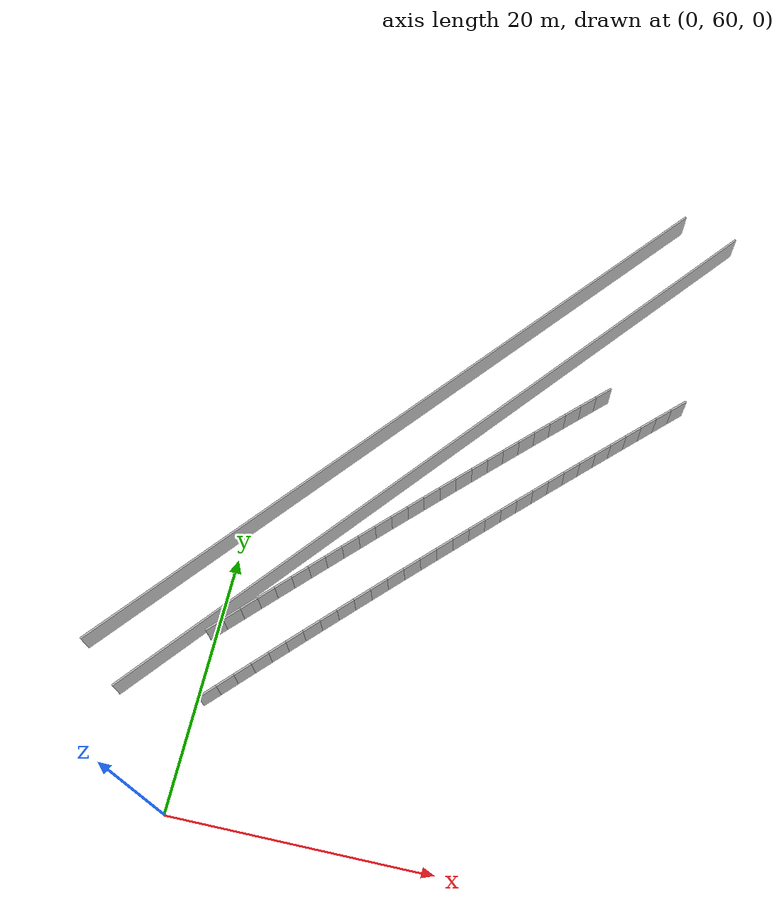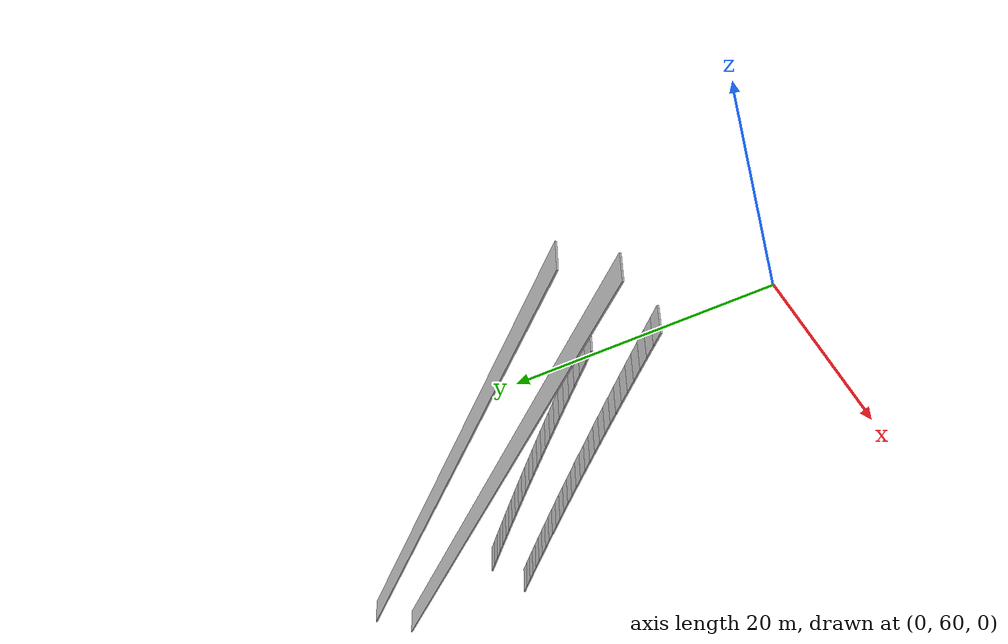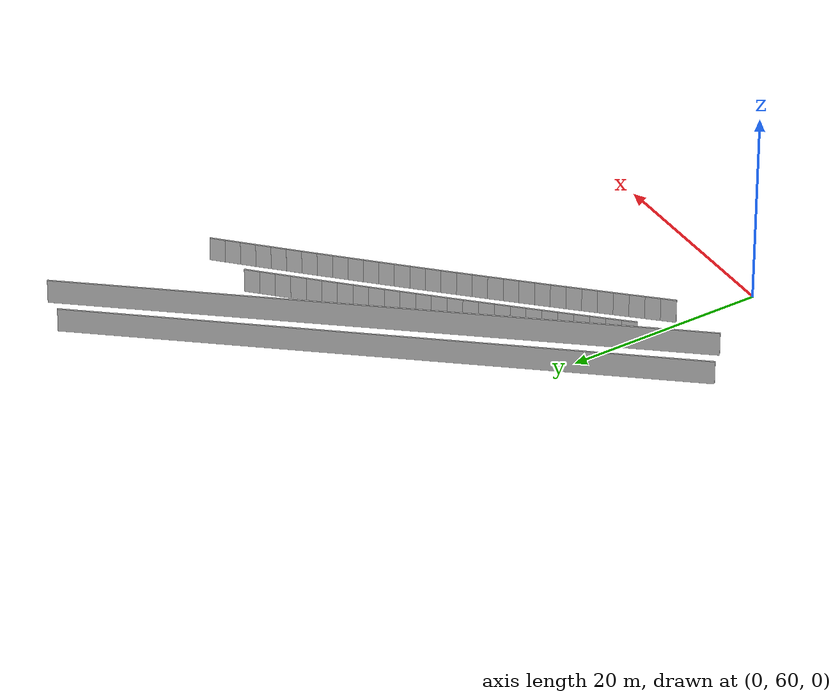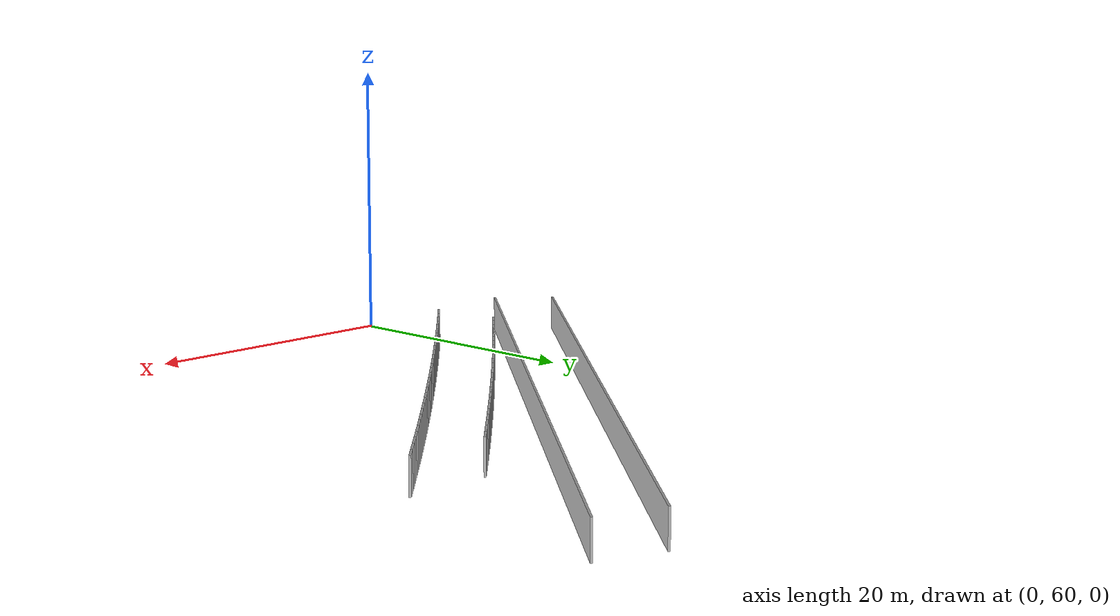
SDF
<?xml version="1.0" ?>
<sdf version="1.6">
  <model name="sps_0520">
    <pose frame="">0 0 0 0 -0 0</pose>
    <static>1</static>
    <self_collide>0</self_collide>
    <allow_auto_disable>0</allow_auto_disable>
    <link name="Wall216">
      <kinematic>0</kinematic>
      <gravity>1</gravity>
      <self_collide>0</self_collide>
      <collision name="collision">
        <geometry>
          <box>
            <size>61.3717 0.15 2.5</size>
          </box>
        </geometry>
        <pose frame="">0 0 0 0 -0 0</pose>
      </collision>
      <visual name="visual">
        <geometry>
          <box>
            <size>61.3717 0.15 2.5</size>
          </box>
        </geometry>
        <pose frame="">0 0 0 0 -0 0</pose>
        <cast_shadows>1</cast_shadows>
        <transparency>0.0</transparency>
      </visual>
      <pose frame="">10.3062 94.3538 1.25 0 0 -2.26727</pose>
    </link>
    <link name="Wall218">
      <kinematic>0</kinematic>
      <gravity>1</gravity>
      <self_collide>0</self_collide>
      <collision name="collision">
        <geometry>
          <box>
            <size>63.1801 0.15 2.5</size>
          </box>
        </geometry>
        <pose frame="">0 0 0 0 -0 0</pose>
      </collision>
      <visual name="visual">
        <geometry>
          <box>
            <size>63.1801 0.15 2.5</size>
          </box>
        </geometry>
        <pose frame="">0 0 0 0 -0 0</pose>
        <cast_shadows>1</cast_shadows>
        <transparency>0.0</transparency>
      </visual>
      <pose frame="">14.2568 92.1703 1.25 0 -0 0.876505</pose>
    </link>
    <link name="Wall3383">
      <kinematic>0</kinematic>
      <gravity>1</gravity>
      <self_collide>0</self_collide>
      <collision name="collision">
        <geometry>
          <box>
            <size>1.49649 0.15 2.5</size>
          </box>
        </geometry>
        <pose frame="">0 0 0 0 -0 0</pose>
      </collision>
      <visual name="visual">
        <geometry>
          <box>
            <size>1.49649 0.15 2.5</size>
          </box>
        </geometry>
        <pose frame="">0 0 0 0 -0 0</pose>
        <cast_shadows>1</cast_shadows>
        <transparency>0.0</transparency>
      </visual>
      <pose frame="">31.7778 99.5212 1.25 0 0 -2.38189</pose>
    </link>
    <link name="Wall3384">
      <kinematic>0</kinematic>
      <gravity>1</gravity>
      <self_collide>0</self_collide>
      <collision name="collision">
        <geometry>
          <box>
            <size>1.49651 0.15 2.5</size>
          </box>
        </geometry>
        <pose frame="">0 0 0 0 -0 0</pose>
      </collision>
      <visual name="visual">
        <geometry>
          <box>
            <size>1.49651 0.15 2.5</size>
          </box>
        </geometry>
        <pose frame="">0 0 0 0 -0 0</pose>
        <cast_shadows>1</cast_shadows>
        <transparency>0.0</transparency>
      </visual>
      <pose frame="">30.6937 98.4896 1.25 0 0 -2.3801</pose>
    </link>
    <link name="Wall3385">
      <kinematic>0</kinematic>
      <gravity>1</gravity>
      <self_collide>0</self_collide>
      <collision name="collision">
        <geometry>
          <box>
            <size>1.49659 0.15 2.5</size>
          </box>
        </geometry>
        <pose frame="">0 0 0 0 -0 0</pose>
      </collision>
      <visual name="visual">
        <geometry>
          <box>
            <size>1.49659 0.15 2.5</size>
          </box>
        </geometry>
        <pose frame="">0 0 0 0 -0 0</pose>
        <cast_shadows>1</cast_shadows>
        <transparency>0.0</transparency>
      </visual>
      <pose frame="">29.6112 97.4562 1.25 0 0 -2.37869</pose>
    </link>
    <link name="Wall3386">
      <kinematic>0</kinematic>
      <gravity>1</gravity>
      <self_collide>0</self_collide>
      <collision name="collision">
        <geometry>
          <box>
            <size>1.49645 0.15 2.5</size>
          </box>
        </geometry>
        <pose frame="">0 0 0 0 -0 0</pose>
      </collision>
      <visual name="visual">
        <geometry>
          <box>
            <size>1.49645 0.15 2.5</size>
          </box>
        </geometry>
        <pose frame="">0 0 0 0 -0 0</pose>
        <cast_shadows>1</cast_shadows>
        <transparency>0.0</transparency>
      </visual>
      <pose frame="">28.5304 96.4211 1.25 0 0 -2.3769</pose>
    </link>
    <link name="Wall3387">
      <kinematic>0</kinematic>
      <gravity>1</gravity>
      <self_collide>0</self_collide>
      <collision name="collision">
        <geometry>
          <box>
            <size>1.49649 0.15 2.5</size>
          </box>
        </geometry>
        <pose frame="">0 0 0 0 -0 0</pose>
      </collision>
      <visual name="visual">
        <geometry>
          <box>
            <size>1.49649 0.15 2.5</size>
          </box>
        </geometry>
        <pose frame="">0 0 0 0 -0 0</pose>
        <cast_shadows>1</cast_shadows>
        <transparency>0.0</transparency>
      </visual>
      <pose frame="">27.4513 95.3843 1.25 0 0 -2.37546</pose>
    </link>
    <link name="Wall3388">
      <kinematic>0</kinematic>
      <gravity>1</gravity>
      <self_collide>0</self_collide>
      <collision name="collision">
        <geometry>
          <box>
            <size>1.49666 0.15 2.5</size>
          </box>
        </geometry>
        <pose frame="">0 0 0 0 -0 0</pose>
      </collision>
      <visual name="visual">
        <geometry>
          <box>
            <size>1.49666 0.15 2.5</size>
          </box>
        </geometry>
        <pose frame="">0 0 0 0 -0 0</pose>
        <cast_shadows>1</cast_shadows>
        <transparency>0.0</transparency>
      </visual>
      <pose frame="">26.3736 94.3458 1.25 0 0 -2.37387</pose>
    </link>
    <link name="Wall3389">
      <kinematic>0</kinematic>
      <gravity>1</gravity>
      <self_collide>0</self_collide>
      <collision name="collision">
        <geometry>
          <box>
            <size>1.49636 0.15 2.5</size>
          </box>
        </geometry>
        <pose frame="">0 0 0 0 -0 0</pose>
      </collision>
      <visual name="visual">
        <geometry>
          <box>
            <size>1.49636 0.15 2.5</size>
          </box>
        </geometry>
        <pose frame="">0 0 0 0 -0 0</pose>
        <cast_shadows>1</cast_shadows>
        <transparency>0.0</transparency>
      </visual>
      <pose frame="">25.2978 93.3056 1.25 0 0 -2.37226</pose>
    </link>
    <link name="Wall3390">
      <kinematic>0</kinematic>
      <gravity>1</gravity>
      <self_collide>0</self_collide>
      <collision name="collision">
        <geometry>
          <box>
            <size>1.49659 0.15 2.5</size>
          </box>
        </geometry>
        <pose frame="">0 0 0 0 -0 0</pose>
      </collision>
      <visual name="visual">
        <geometry>
          <box>
            <size>1.49659 0.15 2.5</size>
          </box>
        </geometry>
        <pose frame="">0 0 0 0 -0 0</pose>
        <cast_shadows>1</cast_shadows>
        <transparency>0.0</transparency>
      </visual>
      <pose frame="">24.2236 92.2637 1.25 0 0 -2.37064</pose>
    </link>
    <link name="Wall3391">
      <kinematic>0</kinematic>
      <gravity>1</gravity>
      <self_collide>0</self_collide>
      <collision name="collision">
        <geometry>
          <box>
            <size>1.49647 0.15 2.5</size>
          </box>
        </geometry>
        <pose frame="">0 0 0 0 -0 0</pose>
      </collision>
      <visual name="visual">
        <geometry>
          <box>
            <size>1.49647 0.15 2.5</size>
          </box>
        </geometry>
        <pose frame="">0 0 0 0 -0 0</pose>
        <cast_shadows>1</cast_shadows>
        <transparency>0.0</transparency>
      </visual>
      <pose frame="">23.151 91.2201 1.25 0 0 -2.36914</pose>
    </link>
    <link name="Wall3392">
      <kinematic>0</kinematic>
      <gravity>1</gravity>
      <self_collide>0</self_collide>
      <collision name="collision">
        <geometry>
          <box>
            <size>1.49648 0.15 2.5</size>
          </box>
        </geometry>
        <pose frame="">0 0 0 0 -0 0</pose>
      </collision>
      <visual name="visual">
        <geometry>
          <box>
            <size>1.49648 0.15 2.5</size>
          </box>
        </geometry>
        <pose frame="">0 0 0 0 -0 0</pose>
        <cast_shadows>1</cast_shadows>
        <transparency>0.0</transparency>
      </visual>
      <pose frame="">22.0801 90.1748 1.25 0 0 -2.36744</pose>
    </link>
    <link name="Wall3393">
      <kinematic>0</kinematic>
      <gravity>1</gravity>
      <self_collide>0</self_collide>
      <collision name="collision">
        <geometry>
          <box>
            <size>1.49646 0.15 2.5</size>
          </box>
        </geometry>
        <pose frame="">0 0 0 0 -0 0</pose>
      </collision>
      <visual name="visual">
        <geometry>
          <box>
            <size>1.49646 0.15 2.5</size>
          </box>
        </geometry>
        <pose frame="">0 0 0 0 -0 0</pose>
        <cast_shadows>1</cast_shadows>
        <transparency>0.0</transparency>
      </visual>
      <pose frame="">21.0109 89.1278 1.25 0 0 -2.36594</pose>
    </link>
    <link name="Wall3394">
      <kinematic>0</kinematic>
      <gravity>1</gravity>
      <self_collide>0</self_collide>
      <collision name="collision">
        <geometry>
          <box>
            <size>1.49657 0.15 2.5</size>
          </box>
        </geometry>
        <pose frame="">0 0 0 0 -0 0</pose>
      </collision>
      <visual name="visual">
        <geometry>
          <box>
            <size>1.49657 0.15 2.5</size>
          </box>
        </geometry>
        <pose frame="">0 0 0 0 -0 0</pose>
        <cast_shadows>1</cast_shadows>
        <transparency>0.0</transparency>
      </visual>
      <pose frame="">19.9433 88.0791 1.25 0 0 -2.3643</pose>
    </link>
    <link name="Wall3395">
      <kinematic>0</kinematic>
      <gravity>1</gravity>
      <self_collide>0</self_collide>
      <collision name="collision">
        <geometry>
          <box>
            <size>1.49659 0.15 2.5</size>
          </box>
        </geometry>
        <pose frame="">0 0 0 0 -0 0</pose>
      </collision>
      <visual name="visual">
        <geometry>
          <box>
            <size>1.49659 0.15 2.5</size>
          </box>
        </geometry>
        <pose frame="">0 0 0 0 -0 0</pose>
        <cast_shadows>1</cast_shadows>
        <transparency>0.0</transparency>
      </visual>
      <pose frame="">18.8773 87.0287 1.25 0 0 -2.36283</pose>
    </link>
    <link name="Wall3396">
      <kinematic>0</kinematic>
      <gravity>1</gravity>
      <self_collide>0</self_collide>
      <collision name="collision">
        <geometry>
          <box>
            <size>1.49649 0.15 2.5</size>
          </box>
        </geometry>
        <pose frame="">0 0 0 0 -0 0</pose>
      </collision>
      <visual name="visual">
        <geometry>
          <box>
            <size>1.49649 0.15 2.5</size>
          </box>
        </geometry>
        <pose frame="">0 0 0 0 -0 0</pose>
        <cast_shadows>1</cast_shadows>
        <transparency>0.0</transparency>
      </visual>
      <pose frame="">17.8129 85.9766 1.25 0 0 -2.3611</pose>
    </link>
    <link name="Wall3397">
      <kinematic>0</kinematic>
      <gravity>1</gravity>
      <self_collide>0</self_collide>
      <collision name="collision">
        <geometry>
          <box>
            <size>1.49653 0.15 2.5</size>
          </box>
        </geometry>
        <pose frame="">0 0 0 0 -0 0</pose>
      </collision>
      <visual name="visual">
        <geometry>
          <box>
            <size>1.49653 0.15 2.5</size>
          </box>
        </geometry>
        <pose frame="">0 0 0 0 -0 0</pose>
        <cast_shadows>1</cast_shadows>
        <transparency>0.0</transparency>
      </visual>
      <pose frame="">16.7504 84.9228 1.25 0 0 -2.35963</pose>
    </link>
    <link name="Wall3398">
      <kinematic>0</kinematic>
      <gravity>1</gravity>
      <self_collide>0</self_collide>
      <collision name="collision">
        <geometry>
          <box>
            <size>1.49639 0.15 2.5</size>
          </box>
        </geometry>
        <pose frame="">0 0 0 0 -0 0</pose>
      </collision>
      <visual name="visual">
        <geometry>
          <box>
            <size>1.49639 0.15 2.5</size>
          </box>
        </geometry>
        <pose frame="">0 0 0 0 -0 0</pose>
        <cast_shadows>1</cast_shadows>
        <transparency>0.0</transparency>
      </visual>
      <pose frame="">15.6894 83.8674 1.25 0 0 -2.35798</pose>
    </link>
    <link name="Wall3399">
      <kinematic>0</kinematic>
      <gravity>1</gravity>
      <self_collide>0</self_collide>
      <collision name="collision">
        <geometry>
          <box>
            <size>1.49656 0.15 2.5</size>
          </box>
        </geometry>
        <pose frame="">0 0 0 0 -0 0</pose>
      </collision>
      <visual name="visual">
        <geometry>
          <box>
            <size>1.49656 0.15 2.5</size>
          </box>
        </geometry>
        <pose frame="">0 0 0 0 -0 0</pose>
        <cast_shadows>1</cast_shadows>
        <transparency>0.0</transparency>
      </visual>
      <pose frame="">14.6302 82.8103 1.25 0 0 -2.35637</pose>
    </link>
    <link name="Wall3400">
      <kinematic>0</kinematic>
      <gravity>1</gravity>
      <self_collide>0</self_collide>
      <collision name="collision">
        <geometry>
          <box>
            <size>1.49635 0.15 2.5</size>
          </box>
        </geometry>
        <pose frame="">0 0 0 0 -0 0</pose>
      </collision>
      <visual name="visual">
        <geometry>
          <box>
            <size>1.49635 0.15 2.5</size>
          </box>
        </geometry>
        <pose frame="">0 0 0 0 -0 0</pose>
        <cast_shadows>1</cast_shadows>
        <transparency>0.0</transparency>
      </visual>
      <pose frame="">13.5727 81.7516 1.25 0 0 -2.35495</pose>
    </link>
    <link name="Wall3401">
      <kinematic>0</kinematic>
      <gravity>1</gravity>
      <self_collide>0</self_collide>
      <collision name="collision">
        <geometry>
          <box>
            <size>1.4967 0.15 2.5</size>
          </box>
        </geometry>
        <pose frame="">0 0 0 0 -0 0</pose>
      </collision>
      <visual name="visual">
        <geometry>
          <box>
            <size>1.4967 0.15 2.5</size>
          </box>
        </geometry>
        <pose frame="">0 0 0 0 -0 0</pose>
        <cast_shadows>1</cast_shadows>
        <transparency>0.0</transparency>
      </visual>
      <pose frame="">12.5167 80.6912 1.25 0 0 -2.35328</pose>
    </link>
    <link name="Wall3402">
      <kinematic>0</kinematic>
      <gravity>1</gravity>
      <self_collide>0</self_collide>
      <collision name="collision">
        <geometry>
          <box>
            <size>1.4964 0.15 2.5</size>
          </box>
        </geometry>
        <pose frame="">0 0 0 0 -0 0</pose>
      </collision>
      <visual name="visual">
        <geometry>
          <box>
            <size>1.4964 0.15 2.5</size>
          </box>
        </geometry>
        <pose frame="">0 0 0 0 -0 0</pose>
        <cast_shadows>1</cast_shadows>
        <transparency>0.0</transparency>
      </visual>
      <pose frame="">11.4623 79.6291 1.25 0 0 -2.35175</pose>
    </link>
    <link name="Wall3403">
      <kinematic>0</kinematic>
      <gravity>1</gravity>
      <self_collide>0</self_collide>
      <collision name="collision">
        <geometry>
          <box>
            <size>1.49668 0.15 2.5</size>
          </box>
        </geometry>
        <pose frame="">0 0 0 0 -0 0</pose>
      </collision>
      <visual name="visual">
        <geometry>
          <box>
            <size>1.49668 0.15 2.5</size>
          </box>
        </geometry>
        <pose frame="">0 0 0 0 -0 0</pose>
        <cast_shadows>1</cast_shadows>
        <transparency>0.0</transparency>
      </visual>
      <pose frame="">10.4098 78.5652 1.25 0 0 -2.34985</pose>
    </link>
    <link name="Wall3404">
      <kinematic>0</kinematic>
      <gravity>1</gravity>
      <self_collide>0</self_collide>
      <collision name="collision">
        <geometry>
          <box>
            <size>1.49652 0.15 2.5</size>
          </box>
        </geometry>
        <pose frame="">0 0 0 0 -0 0</pose>
      </collision>
      <visual name="visual">
        <geometry>
          <box>
            <size>1.49652 0.15 2.5</size>
          </box>
        </geometry>
        <pose frame="">0 0 0 0 -0 0</pose>
        <cast_shadows>1</cast_shadows>
        <transparency>0.0</transparency>
      </visual>
      <pose frame="">9.35906 77.4995 1.25 0 0 -2.34847</pose>
    </link>
    <link name="Wall3405">
      <kinematic>0</kinematic>
      <gravity>1</gravity>
      <self_collide>0</self_collide>
      <collision name="collision">
        <geometry>
          <box>
            <size>1.49662 0.15 2.5</size>
          </box>
        </geometry>
        <pose frame="">0 0 0 0 -0 0</pose>
      </collision>
      <visual name="visual">
        <geometry>
          <box>
            <size>1.49662 0.15 2.5</size>
          </box>
        </geometry>
        <pose frame="">0 0 0 0 -0 0</pose>
        <cast_shadows>1</cast_shadows>
        <transparency>0.0</transparency>
      </visual>
      <pose frame="">8.30987 76.4323 1.25 0 0 -2.34691</pose>
    </link>
    <link name="Wall3406">
      <kinematic>0</kinematic>
      <gravity>1</gravity>
      <self_collide>0</self_collide>
      <collision name="collision">
        <geometry>
          <box>
            <size>1.49634 0.15 2.5</size>
          </box>
        </geometry>
        <pose frame="">0 0 0 0 -0 0</pose>
      </collision>
      <visual name="visual">
        <geometry>
          <box>
            <size>1.49634 0.15 2.5</size>
          </box>
        </geometry>
        <pose frame="">0 0 0 0 -0 0</pose>
        <cast_shadows>1</cast_shadows>
        <transparency>0.0</transparency>
      </visual>
      <pose frame="">7.26235 75.3636 1.25 0 0 -2.34544</pose>
    </link>
    <link name="Wall3407">
      <kinematic>0</kinematic>
      <gravity>1</gravity>
      <self_collide>0</self_collide>
      <collision name="collision">
        <geometry>
          <box>
            <size>1.49646 0.15 2.5</size>
          </box>
        </geometry>
        <pose frame="">0 0 0 0 -0 0</pose>
      </collision>
      <visual name="visual">
        <geometry>
          <box>
            <size>1.49646 0.15 2.5</size>
          </box>
        </geometry>
        <pose frame="">0 0 0 0 -0 0</pose>
        <cast_shadows>1</cast_shadows>
        <transparency>0.0</transparency>
      </visual>
      <pose frame="">6.21654 74.2933 1.25 0 0 -2.34382</pose>
    </link>
    <link name="Wall3408">
      <kinematic>0</kinematic>
      <gravity>1</gravity>
      <self_collide>0</self_collide>
      <collision name="collision">
        <geometry>
          <box>
            <size>1.49654 0.15 2.5</size>
          </box>
        </geometry>
        <pose frame="">0 0 0 0 -0 0</pose>
      </collision>
      <visual name="visual">
        <geometry>
          <box>
            <size>1.49654 0.15 2.5</size>
          </box>
        </geometry>
        <pose frame="">0 0 0 0 -0 0</pose>
        <cast_shadows>1</cast_shadows>
        <transparency>0.0</transparency>
      </visual>
      <pose frame="">5.17245 73.2212 1.25 0 0 -2.34212</pose>
    </link>
    <link name="Wall3409">
      <kinematic>0</kinematic>
      <gravity>1</gravity>
      <self_collide>0</self_collide>
      <collision name="collision">
        <geometry>
          <box>
            <size>1.49627 0.15 2.5</size>
          </box>
        </geometry>
        <pose frame="">0 0 0 0 -0 0</pose>
      </collision>
      <visual name="visual">
        <geometry>
          <box>
            <size>1.49627 0.15 2.5</size>
          </box>
        </geometry>
        <pose frame="">0 0 0 0 -0 0</pose>
        <cast_shadows>1</cast_shadows>
        <transparency>0.0</transparency>
      </visual>
      <pose frame="">4.13015 72.1475 1.25 0 0 -2.34059</pose>
    </link>
    <link name="Wall3410">
      <kinematic>0</kinematic>
      <gravity>1</gravity>
      <self_collide>0</self_collide>
      <collision name="collision">
        <geometry>
          <box>
            <size>1.49648 0.15 2.5</size>
          </box>
        </geometry>
        <pose frame="">0 0 0 0 -0 0</pose>
      </collision>
      <visual name="visual">
        <geometry>
          <box>
            <size>1.49648 0.15 2.5</size>
          </box>
        </geometry>
        <pose frame="">0 0 0 0 -0 0</pose>
        <cast_shadows>1</cast_shadows>
        <transparency>0.0</transparency>
      </visual>
      <pose frame="">3.08956 71.0722 1.25 0 0 -2.33898</pose>
    </link>
    <link name="Wall3411">
      <kinematic>0</kinematic>
      <gravity>1</gravity>
      <self_collide>0</self_collide>
      <collision name="collision">
        <geometry>
          <box>
            <size>1.49665 0.15 2.5</size>
          </box>
        </geometry>
        <pose frame="">0 0 0 0 -0 0</pose>
      </collision>
      <visual name="visual">
        <geometry>
          <box>
            <size>1.49665 0.15 2.5</size>
          </box>
        </geometry>
        <pose frame="">0 0 0 0 -0 0</pose>
        <cast_shadows>1</cast_shadows>
        <transparency>0.0</transparency>
      </visual>
      <pose frame="">2.05056 69.9951 1.25 0 0 -2.33739</pose>
    </link>
    <link name="Wall3412">
      <kinematic>0</kinematic>
      <gravity>1</gravity>
      <self_collide>0</self_collide>
      <collision name="collision">
        <geometry>
          <box>
            <size>1.49653 0.15 2.5</size>
          </box>
        </geometry>
        <pose frame="">0 0 0 0 -0 0</pose>
      </collision>
      <visual name="visual">
        <geometry>
          <box>
            <size>1.49653 0.15 2.5</size>
          </box>
        </geometry>
        <pose frame="">0 0 0 0 -0 0</pose>
        <cast_shadows>1</cast_shadows>
        <transparency>0.0</transparency>
      </visual>
      <pose frame="">1.01327 68.9163 1.25 0 0 -2.33578</pose>
    </link>
    <link name="Wall5997">
      <kinematic>0</kinematic>
      <gravity>1</gravity>
      <self_collide>0</self_collide>
      <collision name="collision">
        <geometry>
          <box>
            <size>1.5031 0.15 2.5</size>
          </box>
        </geometry>
        <pose frame="">0 0 0 0 -0 0</pose>
      </collision>
      <visual name="visual">
        <geometry>
          <box>
            <size>1.5031 0.15 2.5</size>
          </box>
        </geometry>
        <pose frame="">0 0 0 0 -0 0</pose>
        <cast_shadows>1</cast_shadows>
        <transparency>0.0</transparency>
      </visual>
      <pose frame="">25.6543 99.3987 1.25 0 0 -2.3771</pose>
    </link>
    <link name="Wall5998">
      <kinematic>0</kinematic>
      <gravity>1</gravity>
      <self_collide>0</self_collide>
      <collision name="collision">
        <geometry>
          <box>
            <size>1.50301 0.15 2.5</size>
          </box>
        </geometry>
        <pose frame="">0 0 0 0 -0 0</pose>
      </collision>
      <visual name="visual">
        <geometry>
          <box>
            <size>1.50301 0.15 2.5</size>
          </box>
        </geometry>
        <pose frame="">0 0 0 0 -0 0</pose>
        <cast_shadows>1</cast_shadows>
        <transparency>0.0</transparency>
      </visual>
      <pose frame="">24.5703 98.3574 1.25 0 0 -2.37541</pose>
    </link>
    <link name="Wall5999">
      <kinematic>0</kinematic>
      <gravity>1</gravity>
      <self_collide>0</self_collide>
      <collision name="collision">
        <geometry>
          <box>
            <size>1.50327 0.15 2.5</size>
          </box>
        </geometry>
        <pose frame="">0 0 0 0 -0 0</pose>
      </collision>
      <visual name="visual">
        <geometry>
          <box>
            <size>1.50327 0.15 2.5</size>
          </box>
        </geometry>
        <pose frame="">0 0 0 0 -0 0</pose>
        <cast_shadows>1</cast_shadows>
        <transparency>0.0</transparency>
      </visual>
      <pose frame="">23.488 97.3143 1.25 0 0 -2.37388</pose>
    </link>
    <link name="Wall6000">
      <kinematic>0</kinematic>
      <gravity>1</gravity>
      <self_collide>0</self_collide>
      <collision name="collision">
        <geometry>
          <box>
            <size>1.50306 0.15 2.5</size>
          </box>
        </geometry>
        <pose frame="">0 0 0 0 -0 0</pose>
      </collision>
      <visual name="visual">
        <geometry>
          <box>
            <size>1.50306 0.15 2.5</size>
          </box>
        </geometry>
        <pose frame="">0 0 0 0 -0 0</pose>
        <cast_shadows>1</cast_shadows>
        <transparency>0.0</transparency>
      </visual>
      <pose frame="">22.4073 96.2695 1.25 0 0 -2.37227</pose>
    </link>
    <link name="Wall6001">
      <kinematic>0</kinematic>
      <gravity>1</gravity>
      <self_collide>0</self_collide>
      <collision name="collision">
        <geometry>
          <box>
            <size>1.50306 0.15 2.5</size>
          </box>
        </geometry>
        <pose frame="">0 0 0 0 -0 0</pose>
      </collision>
      <visual name="visual">
        <geometry>
          <box>
            <size>1.50306 0.15 2.5</size>
          </box>
        </geometry>
        <pose frame="">0 0 0 0 -0 0</pose>
        <cast_shadows>1</cast_shadows>
        <transparency>0.0</transparency>
      </visual>
      <pose frame="">21.3285 95.223 1.25 0 0 -2.37058</pose>
    </link>
    <link name="Wall6002">
      <kinematic>0</kinematic>
      <gravity>1</gravity>
      <self_collide>0</self_collide>
      <collision name="collision">
        <geometry>
          <box>
            <size>1.50303 0.15 2.5</size>
          </box>
        </geometry>
        <pose frame="">0 0 0 0 -0 0</pose>
      </collision>
      <visual name="visual">
        <geometry>
          <box>
            <size>1.50303 0.15 2.5</size>
          </box>
        </geometry>
        <pose frame="">0 0 0 0 -0 0</pose>
        <cast_shadows>1</cast_shadows>
        <transparency>0.0</transparency>
      </visual>
      <pose frame="">20.2512 94.1748 1.25 0 0 -2.36909</pose>
    </link>
    <link name="Wall6003">
      <kinematic>0</kinematic>
      <gravity>1</gravity>
      <self_collide>0</self_collide>
      <collision name="collision">
        <geometry>
          <box>
            <size>1.50309 0.15 2.5</size>
          </box>
        </geometry>
        <pose frame="">0 0 0 0 -0 0</pose>
      </collision>
      <visual name="visual">
        <geometry>
          <box>
            <size>1.50309 0.15 2.5</size>
          </box>
        </geometry>
        <pose frame="">0 0 0 0 -0 0</pose>
        <cast_shadows>1</cast_shadows>
        <transparency>0.0</transparency>
      </visual>
      <pose frame="">19.1757 93.1249 1.25 0 0 -2.36748</pose>
    </link>
    <link name="Wall6004">
      <kinematic>0</kinematic>
      <gravity>1</gravity>
      <self_collide>0</self_collide>
      <collision name="collision">
        <geometry>
          <box>
            <size>1.50311 0.15 2.5</size>
          </box>
        </geometry>
        <pose frame="">0 0 0 0 -0 0</pose>
      </collision>
      <visual name="visual">
        <geometry>
          <box>
            <size>1.50311 0.15 2.5</size>
          </box>
        </geometry>
        <pose frame="">0 0 0 0 -0 0</pose>
        <cast_shadows>1</cast_shadows>
        <transparency>0.0</transparency>
      </visual>
      <pose frame="">18.1017 92.0733 1.25 0 0 -2.36596</pose>
    </link>
    <link name="Wall6005">
      <kinematic>0</kinematic>
      <gravity>1</gravity>
      <self_collide>0</self_collide>
      <collision name="collision">
        <geometry>
          <box>
            <size>1.50308 0.15 2.5</size>
          </box>
        </geometry>
        <pose frame="">0 0 0 0 -0 0</pose>
      </collision>
      <visual name="visual">
        <geometry>
          <box>
            <size>1.50308 0.15 2.5</size>
          </box>
        </geometry>
        <pose frame="">0 0 0 0 -0 0</pose>
        <cast_shadows>1</cast_shadows>
        <transparency>0.0</transparency>
      </visual>
      <pose frame="">17.0294 91.02 1.25 0 0 -2.36429</pose>
    </link>
    <link name="Wall6006">
      <kinematic>0</kinematic>
      <gravity>1</gravity>
      <self_collide>0</self_collide>
      <collision name="collision">
        <geometry>
          <box>
            <size>1.50307 0.15 2.5</size>
          </box>
        </geometry>
        <pose frame="">0 0 0 0 -0 0</pose>
      </collision>
      <visual name="visual">
        <geometry>
          <box>
            <size>1.50307 0.15 2.5</size>
          </box>
        </geometry>
        <pose frame="">0 0 0 0 -0 0</pose>
        <cast_shadows>1</cast_shadows>
        <transparency>0.0</transparency>
      </visual>
      <pose frame="">15.9588 89.965 1.25 0 0 -2.3628</pose>
    </link>
    <link name="Wall6007">
      <kinematic>0</kinematic>
      <gravity>1</gravity>
      <self_collide>0</self_collide>
      <collision name="collision">
        <geometry>
          <box>
            <size>1.50318 0.15 2.5</size>
          </box>
        </geometry>
        <pose frame="">0 0 0 0 -0 0</pose>
      </collision>
      <visual name="visual">
        <geometry>
          <box>
            <size>1.50318 0.15 2.5</size>
          </box>
        </geometry>
        <pose frame="">0 0 0 0 -0 0</pose>
        <cast_shadows>1</cast_shadows>
        <transparency>0.0</transparency>
      </visual>
      <pose frame="">14.8898 88.9083 1.25 0 0 -2.36116</pose>
    </link>
    <link name="Wall6008">
      <kinematic>0</kinematic>
      <gravity>1</gravity>
      <self_collide>0</self_collide>
      <collision name="collision">
        <geometry>
          <box>
            <size>1.50304 0.15 2.5</size>
          </box>
        </geometry>
        <pose frame="">0 0 0 0 -0 0</pose>
      </collision>
      <visual name="visual">
        <geometry>
          <box>
            <size>1.50304 0.15 2.5</size>
          </box>
        </geometry>
        <pose frame="">0 0 0 0 -0 0</pose>
        <cast_shadows>1</cast_shadows>
        <transparency>0.0</transparency>
      </visual>
      <pose frame="">13.8225 87.8499 1.25 0 0 -2.35958</pose>
    </link>
    <link name="Wall6009">
      <kinematic>0</kinematic>
      <gravity>1</gravity>
      <self_collide>0</self_collide>
      <collision name="collision">
        <geometry>
          <box>
            <size>1.50317 0.15 2.5</size>
          </box>
        </geometry>
        <pose frame="">0 0 0 0 -0 0</pose>
      </collision>
      <visual name="visual">
        <geometry>
          <box>
            <size>1.50317 0.15 2.5</size>
          </box>
        </geometry>
        <pose frame="">0 0 0 0 -0 0</pose>
        <cast_shadows>1</cast_shadows>
        <transparency>0.0</transparency>
      </visual>
      <pose frame="">12.7569 86.7898 1.25 0 0 -2.358</pose>
    </link>
    <link name="Wall6010">
      <kinematic>0</kinematic>
      <gravity>1</gravity>
      <self_collide>0</self_collide>
      <collision name="collision">
        <geometry>
          <box>
            <size>1.50303 0.15 2.5</size>
          </box>
        </geometry>
        <pose frame="">0 0 0 0 -0 0</pose>
      </collision>
      <visual name="visual">
        <geometry>
          <box>
            <size>1.50303 0.15 2.5</size>
          </box>
        </geometry>
        <pose frame="">0 0 0 0 -0 0</pose>
        <cast_shadows>1</cast_shadows>
        <transparency>0.0</transparency>
      </visual>
      <pose frame="">11.693 85.728 1.25 0 0 -2.35637</pose>
    </link>
    <link name="Wall6011">
      <kinematic>0</kinematic>
      <gravity>1</gravity>
      <self_collide>0</self_collide>
      <collision name="collision">
        <geometry>
          <box>
            <size>1.50316 0.15 2.5</size>
          </box>
        </geometry>
        <pose frame="">0 0 0 0 -0 0</pose>
      </collision>
      <visual name="visual">
        <geometry>
          <box>
            <size>1.50316 0.15 2.5</size>
          </box>
        </geometry>
        <pose frame="">0 0 0 0 -0 0</pose>
        <cast_shadows>1</cast_shadows>
        <transparency>0.0</transparency>
      </visual>
      <pose frame="">10.6308 84.6645 1.25 0 0 -2.35479</pose>
    </link>
    <link name="Wall6012">
      <kinematic>0</kinematic>
      <gravity>1</gravity>
      <self_collide>0</self_collide>
      <collision name="collision">
        <geometry>
          <box>
            <size>1.50317 0.15 2.5</size>
          </box>
        </geometry>
        <pose frame="">0 0 0 0 -0 0</pose>
      </collision>
      <visual name="visual">
        <geometry>
          <box>
            <size>1.50317 0.15 2.5</size>
          </box>
        </geometry>
        <pose frame="">0 0 0 0 -0 0</pose>
        <cast_shadows>1</cast_shadows>
        <transparency>0.0</transparency>
      </visual>
      <pose frame="">9.57024 83.5992 1.25 0 0 -2.35312</pose>
    </link>
    <link name="Wall6013">
      <kinematic>0</kinematic>
      <gravity>1</gravity>
      <self_collide>0</self_collide>
      <collision name="collision">
        <geometry>
          <box>
            <size>1.50305 0.15 2.5</size>
          </box>
        </geometry>
        <pose frame="">0 0 0 0 -0 0</pose>
      </collision>
      <visual name="visual">
        <geometry>
          <box>
            <size>1.50305 0.15 2.5</size>
          </box>
        </geometry>
        <pose frame="">0 0 0 0 -0 0</pose>
        <cast_shadows>1</cast_shadows>
        <transparency>0.0</transparency>
      </visual>
      <pose frame="">8.51144 82.5323 1.25 0 0 -2.35166</pose>
    </link>
    <link name="Wall6014">
      <kinematic>0</kinematic>
      <gravity>1</gravity>
      <self_collide>0</self_collide>
      <collision name="collision">
        <geometry>
          <box>
            <size>1.50306 0.15 2.5</size>
          </box>
        </geometry>
        <pose frame="">0 0 0 0 -0 0</pose>
      </collision>
      <visual name="visual">
        <geometry>
          <box>
            <size>1.50306 0.15 2.5</size>
          </box>
        </geometry>
        <pose frame="">0 0 0 0 -0 0</pose>
        <cast_shadows>1</cast_shadows>
        <transparency>0.0</transparency>
      </visual>
      <pose frame="">7.45425 81.4639 1.25 0 0 -2.35016</pose>
    </link>
    <link name="Wall6015">
      <kinematic>0</kinematic>
      <gravity>1</gravity>
      <self_collide>0</self_collide>
      <collision name="collision">
        <geometry>
          <box>
            <size>1.50304 0.15 2.5</size>
          </box>
        </geometry>
        <pose frame="">0 0 0 0 -0 0</pose>
      </collision>
      <visual name="visual">
        <geometry>
          <box>
            <size>1.50304 0.15 2.5</size>
          </box>
        </geometry>
        <pose frame="">0 0 0 0 -0 0</pose>
        <cast_shadows>1</cast_shadows>
        <transparency>0.0</transparency>
      </visual>
      <pose frame="">6.39876 80.3938 1.25 0 0 -2.34847</pose>
    </link>
    <link name="Wall6016">
      <kinematic>0</kinematic>
      <gravity>1</gravity>
      <self_collide>0</self_collide>
      <collision name="collision">
        <geometry>
          <box>
            <size>1.5031 0.15 2.5</size>
          </box>
        </geometry>
        <pose frame="">0 0 0 0 -0 0</pose>
      </collision>
      <visual name="visual">
        <geometry>
          <box>
            <size>1.5031 0.15 2.5</size>
          </box>
        </geometry>
        <pose frame="">0 0 0 0 -0 0</pose>
        <cast_shadows>1</cast_shadows>
        <transparency>0.0</transparency>
      </visual>
      <pose frame="">5.34496 79.322 1.25 0 0 -2.34701</pose>
    </link>
    <link name="Wall6017">
      <kinematic>0</kinematic>
      <gravity>1</gravity>
      <self_collide>0</self_collide>
      <collision name="collision">
        <geometry>
          <box>
            <size>1.50312 0.15 2.5</size>
          </box>
        </geometry>
        <pose frame="">0 0 0 0 -0 0</pose>
      </collision>
      <visual name="visual">
        <geometry>
          <box>
            <size>1.50312 0.15 2.5</size>
          </box>
        </geometry>
        <pose frame="">0 0 0 0 -0 0</pose>
        <cast_shadows>1</cast_shadows>
        <transparency>0.0</transparency>
      </visual>
      <pose frame="">4.29284 78.2485 1.25 0 0 -2.34528</pose>
    </link>
    <link name="Wall6018">
      <kinematic>0</kinematic>
      <gravity>1</gravity>
      <self_collide>0</self_collide>
      <collision name="collision">
        <geometry>
          <box>
            <size>1.50302 0.15 2.5</size>
          </box>
        </geometry>
        <pose frame="">0 0 0 0 -0 0</pose>
      </collision>
      <visual name="visual">
        <geometry>
          <box>
            <size>1.50302 0.15 2.5</size>
          </box>
        </geometry>
        <pose frame="">0 0 0 0 -0 0</pose>
        <cast_shadows>1</cast_shadows>
        <transparency>0.0</transparency>
      </visual>
      <pose frame="">3.24255 77.1733 1.25 0 0 -2.34365</pose>
    </link>
    <link name="Wall6019">
      <kinematic>0</kinematic>
      <gravity>1</gravity>
      <self_collide>0</self_collide>
      <collision name="collision">
        <geometry>
          <box>
            <size>1.50301 0.15 2.5</size>
          </box>
        </geometry>
        <pose frame="">0 0 0 0 -0 0</pose>
      </collision>
      <visual name="visual">
        <geometry>
          <box>
            <size>1.50301 0.15 2.5</size>
          </box>
        </geometry>
        <pose frame="">0 0 0 0 -0 0</pose>
        <cast_shadows>1</cast_shadows>
        <transparency>0.0</transparency>
      </visual>
      <pose frame="">2.19396 76.0965 1.25 0 0 -2.34218</pose>
    </link>
    <link name="Wall6020">
      <kinematic>0</kinematic>
      <gravity>1</gravity>
      <self_collide>0</self_collide>
      <collision name="collision">
        <geometry>
          <box>
            <size>1.50322 0.15 2.5</size>
          </box>
        </geometry>
        <pose frame="">0 0 0 0 -0 0</pose>
      </collision>
      <visual name="visual">
        <geometry>
          <box>
            <size>1.50322 0.15 2.5</size>
          </box>
        </geometry>
        <pose frame="">0 0 0 0 -0 0</pose>
        <cast_shadows>1</cast_shadows>
        <transparency>0.0</transparency>
      </visual>
      <pose frame="">1.14696 75.018 1.25 0 0 -2.34058</pose>
    </link>
    <link name="Wall6021">
      <kinematic>0</kinematic>
      <gravity>1</gravity>
      <self_collide>0</self_collide>
      <collision name="collision">
        <geometry>
          <box>
            <size>1.50313 0.15 2.5</size>
          </box>
        </geometry>
        <pose frame="">0 0 0 0 -0 0</pose>
      </collision>
      <visual name="visual">
        <geometry>
          <box>
            <size>1.50313 0.15 2.5</size>
          </box>
        </geometry>
        <pose frame="">0 0 0 0 -0 0</pose>
        <cast_shadows>1</cast_shadows>
        <transparency>0.0</transparency>
      </visual>
      <pose frame="">0.101646 73.9378 1.25 0 0 -2.33899</pose>
    </link>
  </model>
</sdf>
